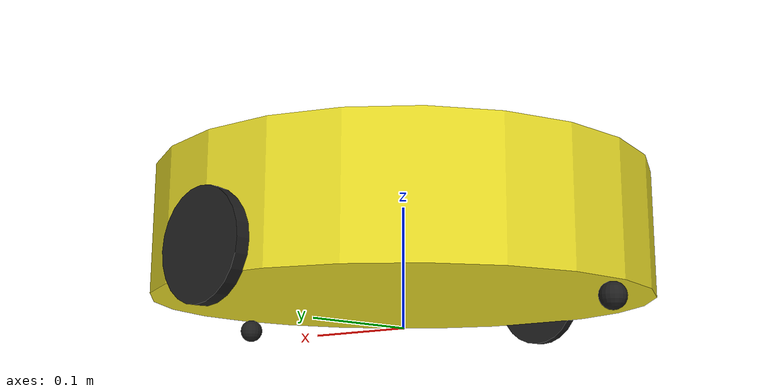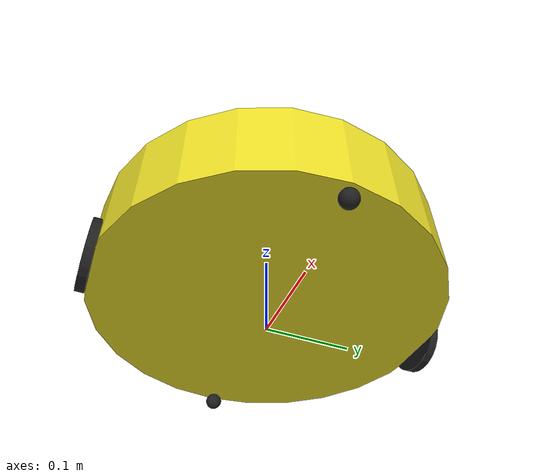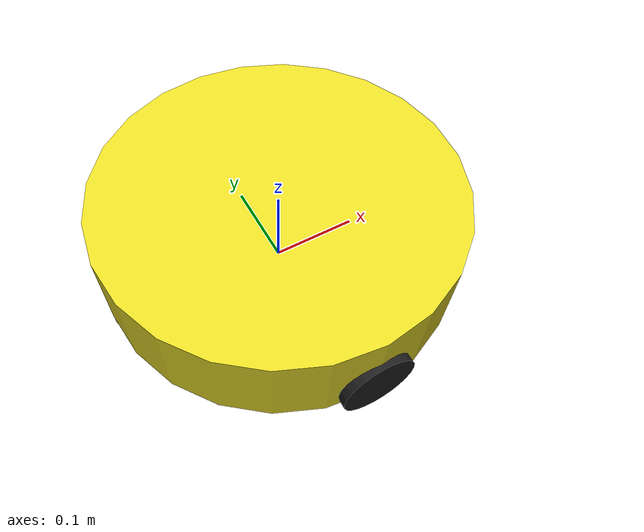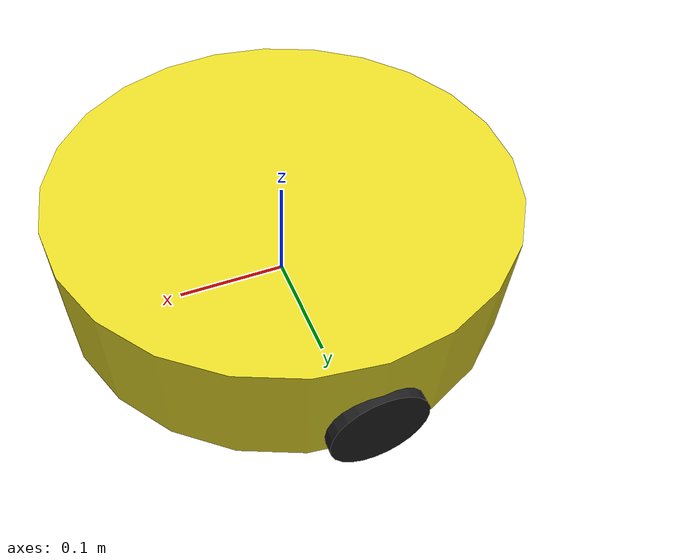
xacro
<robot name="my_car" xmlns:xacro="http://wiki.ros.org/xacro">
    <!-- Macro for inertia matrix -->
    <xacro:macro name="sphere_inertial_matrix" params="m r">
        <inertial>
            <mass value="${m}" />
            <inertia ixx="${2*m*r*r/5}" ixy="0" ixz="0"
                iyy="${2*m*r*r/5}" iyz="0"
                izz="${2*m*r*r/5}" />
        </inertial>
    </xacro:macro>

    <xacro:macro name="cylinder_inertial_matrix" params="m r h">
        <inertial>
            <mass value="${m}" />
            <inertia ixx="${m*(3*r*r+h*h)/12}" ixy = "0" ixz = "0"
                iyy="${m*(3*r*r+h*h)/12}" iyz = "0"
                izz="${m*r*r/2}" />
        </inertial>
    </xacro:macro>

    <xacro:macro name="Box_inertial_matrix" params="m l w h">
       <inertial>
               <mass value="${m}" />
               <inertia ixx="${m*(h*h + l*l)/12}" ixy = "0" ixz = "0"
                   iyy="${m*(w*w + l*l)/12}" iyz= "0"
                   izz="${m*(w*w + h*h)/12}" />
       </inertial>
   </xacro:macro>

   <xacro:property name="PI" value="3.1415926"/>
    <!-- 底盘属性 -->
    <xacro:property name="base_footprint_radius" value="0.001" /> <!-- base_footprint 半径  -->
    <xacro:property name="base_link_radius" value="0.2" /> <!-- base_link 半径 -->
    <xacro:property name="base_link_length" value="0.1" /> <!-- base_link 高 -->
    <xacro:property name="earth_space" value="0.02" /> <!-- 离地间距 -->
    <xacro:property name="base_link_m" value="1" /> <!-- 质量  -->
    <!-- 驱动轮 -->
    <!-- 驱动轮属性 -->
    <xacro:property name="wheel_radius" value="0.04" /><!-- 半径 -->
    <xacro:property name="wheel_length" value="0.01" /><!-- 宽度 -->
    <xacro:property name="wheel_m" value="0.1" /> <!-- 质量  -->

    <!-- 支撑轮 -->
    <!-- 支撑轮属性 -->
    <xacro:property name="support_wheel_radius" value="0.01" /> <!-- 支撑轮半径 -->
    <xacro:property name="support_wheel_m" value="0.03" /> <!-- 质量  -->

    <gazebo reference="base_link">
        <material>Gazebo/Yellow</material>
    </gazebo>

    <!-- 底盘 -->
    <link name="base_footprint">
      <visual>
        <geometry>
          <sphere radius="${base_footprint_radius}" />
        </geometry>
      </visual>
    </link>
    <link name="base_link">
      <visual>
        <geometry>
          <cylinder radius="${base_link_radius}" length="${base_link_length}" />
        </geometry>
        <origin xyz="0 0 0" rpy="0 0 0" />
      </visual>
      <collision>
        <geometry>
          <cylinder radius="${base_link_radius}" length="${base_link_length}" />
        </geometry>
        <origin xyz="0 0 0" rpy="0 0 0" />
      </collision>
      <xacro:cylinder_inertial_matrix m="${base_link_m}" r="${base_link_radius}" h="${base_link_length}" />
    </link>

    <joint name="base_link2base_footprint" type="fixed">
      <parent link="base_footprint" />
      <child link="base_link" />
      <origin xyz="0 0 ${earth_space + base_link_length / 2 }" />
    </joint>

    <!-- 驱动轮宏实现 -->
    <xacro:macro name="add_wheels" params="name flag">
      <link name="${name}_wheel">
        <visual>
          <geometry>
            <cylinder radius="${wheel_radius}" length="${wheel_length}" />
          </geometry>
          <origin xyz="0.0 0.0 0.0" rpy="${PI / 2} 0.0 0.0" />
          <material name="black" />
        </visual>
        <collision>
          <geometry>
            <cylinder radius="${wheel_radius}" length="${wheel_length}" />
          </geometry>
          <origin xyz="0.0 0.0 0.0" rpy="${PI / 2} 0.0 0.0" />
        </collision>
        <xacro:cylinder_inertial_matrix m="${wheel_m}" r="${wheel_radius}" h="${wheel_length}" />

      </link>

      <joint name="${name}_wheel2base_link" type="continuous">
        <parent link="base_link" />
        <child link="${name}_wheel" />
        <origin xyz="0 ${flag * base_link_radius} ${-(earth_space + base_link_length / 2 - wheel_radius) }" />
        <axis xyz="0 1 0" />
      </joint>

      <gazebo reference="${name}_wheel">
        <material>Gazebo/Red</material>
      </gazebo>

    </xacro:macro>
    <xacro:add_wheels name="left" flag="1" />
    <xacro:add_wheels name="right" flag="-1" />

    <!-- 支撑轮宏 -->
    <xacro:macro name="add_support_wheel" params="name flag" >
      <link name="${name}_wheel">
        <visual>
            <geometry>
                <sphere radius="${support_wheel_radius}" />
            </geometry>
            <origin xyz="0 0 0" rpy="0 0 0" />
            <material name="black" />
        </visual>
        <collision>
            <geometry>
                <sphere radius="${support_wheel_radius}" />
            </geometry>
            <origin xyz="0 0 0" rpy="0 0 0" />
        </collision>
        <xacro:sphere_inertial_matrix m="${support_wheel_m}" r="${support_wheel_radius}" />
      </link>

      <joint name="${name}_wheel2base_link" type="continuous">
          <parent link="base_link" />
          <child link="${name}_wheel" />
          <origin xyz="${flag * (base_link_radius - support_wheel_radius)} 0 ${-(base_link_length / 2 + earth_space / 2)}" />
          <axis xyz="1 1 1" />
      </joint>
      <gazebo reference="${name}_wheel">
        <material>Gazebo/Red</material>
      </gazebo>
    </xacro:macro>

    <xacro:add_support_wheel name="front" flag="1" />
    <xacro:add_support_wheel name="back" flag="-1" />

     <!-- 传动实现:用于连接控制器与关节 -->
    <xacro:macro name="joint_trans" params="joint_name">
        <!-- Transmission is important to link the joints and the controller -->
        <transmission name="${joint_name}_trans">
            <type>transmission_interface/SimpleTransmission</type>
            <joint name="${joint_name}">
                <hardwareInterface>hardware_interface/VelocityJointInterface</hardwareInterface>
            </joint>
            <actuator name="${joint_name}_motor">
                <hardwareInterface>hardware_interface/VelocityJointInterface</hardwareInterface>
                <mechanicalReduction>1</mechanicalReduction>
            </actuator>
        </transmission>
    </xacro:macro>

    <!-- 每一个驱动轮都需要配置传动装置 -->
    <xacro:joint_trans joint_name="left_wheel2base_link" />
    <xacro:joint_trans joint_name="right_wheel2base_link" />
    <!-- 控制器 -->
    <gazebo>
        <plugin name="differential_drive_controller" filename="libgazebo_ros_diff_drive.so">
            <rosDebugLevel>Debug</rosDebugLevel>
            <publishWheelTF>true</publishWheelTF>
            <robotNamespace>/</robotNamespace>
            <publishTf>1</publishTf>
            <publishWheelJointState>true</publishWheelJointState>
            <alwaysOn>true</alwaysOn>
            <updateRate>100.0</updateRate>
            <legacyMode>true</legacyMode>
            <leftJoint>left_wheel2base_link</leftJoint> <!-- 左轮 -->
            <rightJoint>right_wheel2base_link</rightJoint> <!-- 右轮 -->
            <wheelSeparation>${base_link_radius * 2}</wheelSeparation> <!-- 车轮间距 -->
            <wheelDiameter>${wheel_radius * 2}</wheelDiameter> <!-- 车轮直径 -->
            <broadcastTF>1</broadcastTF>
            <wheelTorque>30</wheelTorque>
            <wheelAcceleration>1.8</wheelAcceleration>
            <commandTopic>cmd_topic1</commandTopic> <!-- 运动控制话题 -->
            <odometryFrame>odom</odometryFrame>
            <odometryTopic>odom</odometryTopic> <!-- 里程计话题 -->
            <robotBaseFrame>base_footprint</robotBaseFrame> <!-- 根坐标系 -->
        </plugin>
    </gazebo>

</robot>
